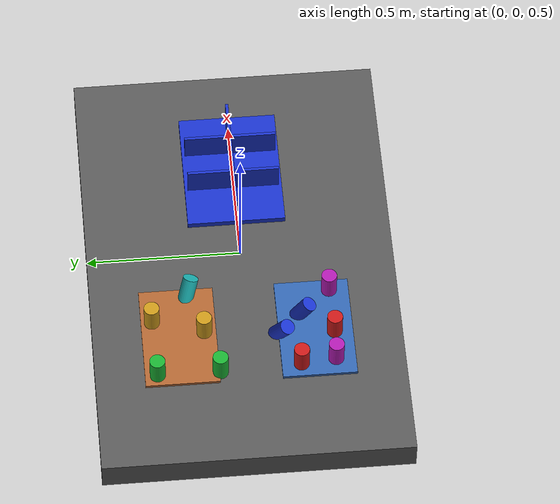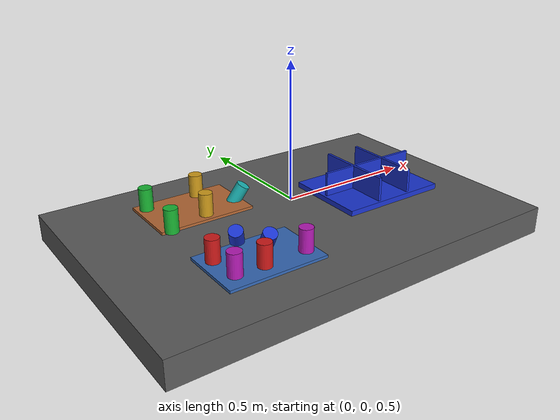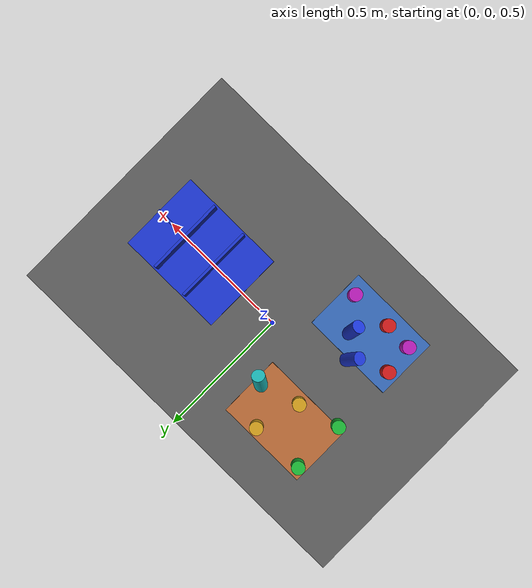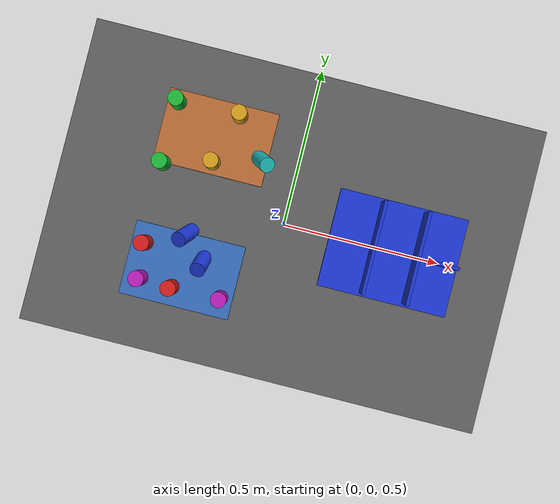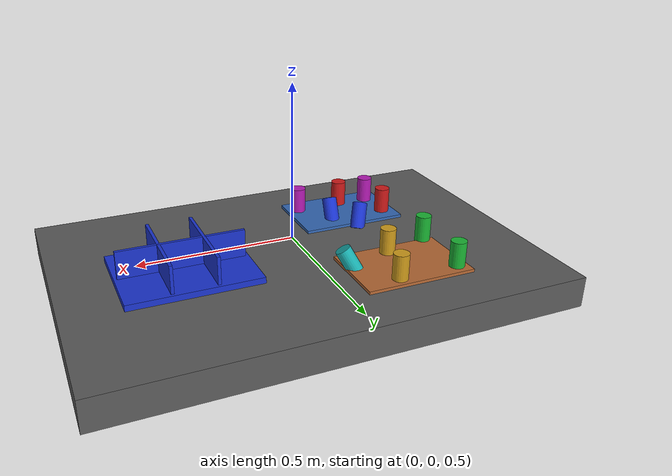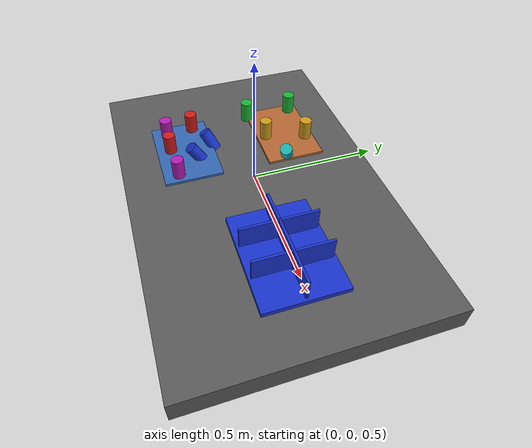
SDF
<?xml version="1.0" ?>
<sdf version="1.9">
  <!-- Standalone M1B scene.  The controller-backed Panda is spawned by the
       existing launch path; this file never alters the frozen M1A cube world. -->
  <world name="industrial_cylinder_v1">
    <physics name="bullet" type="bullet"><max_step_size>0.001</max_step_size><real_time_factor>1.0</real_time_factor></physics>
    <plugin name="gz::sim::systems::Physics" filename="gz-sim-physics-system"><engine><filename>gz-physics-bullet-featherstone-plugin</filename></engine></plugin>
    <plugin name="gz::sim::systems::UserCommands" filename="gz-sim-user-commands-system"/>
    <plugin name="gz::sim::systems::SceneBroadcaster" filename="gz-sim-scene-broadcaster-system"/>
    <plugin name="gz::sim::systems::Sensors" filename="gz-sim-sensors-system"><render_engine>ogre2</render_engine></plugin>
    <gravity>0 0 -9.81</gravity>
    <light type="directional" name="industrial_light"><pose>0 0 5 0 0 0</pose><direction>-0.3 0.2 -0.9</direction><diffuse>0.9 0.9 0.9 1</diffuse></light>
    <model name="industrial_work_table"><static>true</static><link name="link"><pose>0 0 0.4 0 0 0</pose><collision name="collision"><geometry><box><size>1.5 1.0 0.1</size></box></geometry></collision><visual name="visual"><geometry><box><size>1.5 1.0 0.1</size></box></geometry><material><diffuse>0.35 0.35 0.35 1</diffuse></material></visual></link></model>
    <model name="camera_fixture"><static>true</static><link name="camera_rgbd"><pose>-0.80 -0.80 1.40 0 0.77 0.93</pose><sensor name="front_rgbd" type="rgbd_camera"><always_on>1</always_on><update_rate>15</update_rate><topic>/xh/camera/rgbd</topic><camera><horizontal_fov>1.047</horizontal_fov><image><width>640</width><height>480</height><format>R8G8B8</format></image><clip><near>0.1</near><far>4.0</far></clip></camera></sensor></link></model>
    <model name="incoming_zone_a"><static>true</static><link name="link"><pose>-0.28 -0.22 0.455 0 0 0</pose><visual name="visual"><geometry><box><size>0.36 0.24 0.01</size></box></geometry><material><diffuse>0.2 0.4 0.7 1</diffuse></material></visual></link></model>
    <model name="incoming_zone_b"><static>true</static><link name="link"><pose>-0.28 0.22 0.455 0 0 0</pose><visual name="visual"><geometry><box><size>0.36 0.24 0.01</size></box></geometry><material><diffuse>0.7 0.4 0.2 1</diffuse></material></visual></link></model>
    <!-- M1B_RANDOM_PARTS_BEGIN -->
    <model name="cylinder_01"><pose>-0.2992 -0.2805 0.5000 0.0000 0.0000 1.7657</pose><link name="link"><inertial><mass>0.06</mass></inertial><collision name="collision"><geometry><cylinder><radius>0.025</radius><length>0.09</length></cylinder></geometry></collision><visual name="visual"><geometry><cylinder><radius>0.025</radius><length>0.09</length></cylinder></geometry><material><diffuse>0.800 0.100 0.100 1</diffuse><specular>0.15 0.15 0.15 1</specular></material></visual></link></model>
    <model name="cylinder_02"><pose>-0.4231 0.2991 0.5000 3.1416 0.0000 -0.5654</pose><link name="link"><inertial><mass>0.06</mass></inertial><collision name="collision"><geometry><cylinder><radius>0.025</radius><length>0.09</length></cylinder></geometry></collision><visual name="visual"><geometry><cylinder><radius>0.025</radius><length>0.09</length></cylinder></geometry><material><diffuse>0.100 0.700 0.200 1</diffuse><specular>0.15 0.15 0.15 1</specular></material></visual></link></model>
    <model name="cylinder_03"><pose>-0.2241 -0.1819 0.4800 0.4500 -0.3000 0.4190</pose><link name="link"><inertial><mass>0.06</mass></inertial><collision name="collision"><geometry><cylinder><radius>0.025</radius><length>0.09</length></cylinder></geometry></collision><visual name="visual"><geometry><cylinder><radius>0.025</radius><length>0.09</length></cylinder></geometry><material><diffuse>0.100 0.200 0.800 1</diffuse><specular>0.15 0.15 0.15 1</specular></material></visual></link></model>
    <model name="cylinder_04"><pose>-0.2698 0.1384 0.5000 0.0000 0.0000 1.2607</pose><link name="link"><inertial><mass>0.06</mass></inertial><collision name="collision"><geometry><cylinder><radius>0.025</radius><length>0.09</length></cylinder></geometry></collision><visual name="visual"><geometry><cylinder><radius>0.025</radius><length>0.09</length></cylinder></geometry><material><diffuse>0.800 0.600 0.100 1</diffuse><specular>0.15 0.15 0.15 1</specular></material></visual></link></model>
    <model name="cylinder_05"><pose>-0.1392 -0.2766 0.5000 3.1416 0.0000 -0.6271</pose><link name="link"><inertial><mass>0.06</mass></inertial><collision name="collision"><geometry><cylinder><radius>0.025</radius><length>0.09</length></cylinder></geometry></collision><visual name="visual"><geometry><cylinder><radius>0.025</radius><length>0.09</length></cylinder></geometry><material><diffuse>0.700 0.100 0.700 1</diffuse><specular>0.15 0.15 0.15 1</specular></material></visual></link></model>
    <model name="cylinder_06"><pose>-0.1153 0.1803 0.4800 0.4500 -0.3000 1.5786</pose><link name="link"><inertial><mass>0.06</mass></inertial><collision name="collision"><geometry><cylinder><radius>0.025</radius><length>0.09</length></cylinder></geometry></collision><visual name="visual"><geometry><cylinder><radius>0.025</radius><length>0.09</length></cylinder></geometry><material><diffuse>0.100 0.700 0.700 1</diffuse><specular>0.15 0.15 0.15 1</specular></material></visual></link></model>
    <model name="cylinder_07"><pose>-0.4149 -0.1637 0.5000 0.0000 0.0000 0.9017</pose><link name="link"><inertial><mass>0.06</mass></inertial><collision name="collision"><geometry><cylinder><radius>0.025</radius><length>0.09</length></cylinder></geometry></collision><visual name="visual"><geometry><cylinder><radius>0.025</radius><length>0.09</length></cylinder></geometry><material><diffuse>0.800 0.100 0.100 1</diffuse><specular>0.15 0.15 0.15 1</specular></material></visual></link></model>
    <model name="cylinder_08"><pose>-0.4241 0.0975 0.5000 3.1416 0.0000 -0.0673</pose><link name="link"><inertial><mass>0.06</mass></inertial><collision name="collision"><geometry><cylinder><radius>0.025</radius><length>0.09</length></cylinder></geometry></collision><visual name="visual"><geometry><cylinder><radius>0.025</radius><length>0.09</length></cylinder></geometry><material><diffuse>0.100 0.700 0.200 1</diffuse><specular>0.15 0.15 0.15 1</specular></material></visual></link></model>
    <model name="cylinder_09"><pose>-0.2949 -0.1085 0.4800 0.4500 -0.3000 -0.0878</pose><link name="link"><inertial><mass>0.06</mass></inertial><collision name="collision"><geometry><cylinder><radius>0.025</radius><length>0.09</length></cylinder></geometry></collision><visual name="visual"><geometry><cylinder><radius>0.025</radius><length>0.09</length></cylinder></geometry><material><diffuse>0.100 0.200 0.800 1</diffuse><specular>0.15 0.15 0.15 1</specular></material></visual></link></model>
    <model name="cylinder_10"><pose>-0.2204 0.3039 0.5000 0.0000 0.0000 2.9508</pose><link name="link"><inertial><mass>0.06</mass></inertial><collision name="collision"><geometry><cylinder><radius>0.025</radius><length>0.09</length></cylinder></geometry></collision><visual name="visual"><geometry><cylinder><radius>0.025</radius><length>0.09</length></cylinder></geometry><material><diffuse>0.800 0.600 0.100 1</diffuse><specular>0.15 0.15 0.15 1</specular></material></visual></link></model>
    <model name="cylinder_11"><pose>-0.4032 -0.2760 0.5000 3.1416 0.0000 2.8826</pose><link name="link"><inertial><mass>0.06</mass></inertial><collision name="collision"><geometry><cylinder><radius>0.025</radius><length>0.09</length></cylinder></geometry></collision><visual name="visual"><geometry><cylinder><radius>0.025</radius><length>0.09</length></cylinder></geometry><material><diffuse>0.700 0.100 0.700 1</diffuse><specular>0.15 0.15 0.15 1</specular></material></visual></link></model>
    <!-- M1B_RANDOM_PARTS_END -->
    <model name="blue_partition_bin"><static>true</static><pose>0.36 0 0.45 0 0 0</pose><link name="link"><collision name="floor"><pose>0 0 0.01 0 0 0</pose><geometry><box><size>0.42 0.32 0.02</size></box></geometry></collision><visual name="floor_visual"><pose>0 0 0.01 0 0 0</pose><geometry><box><size>0.42 0.32 0.02</size></box></geometry><material><diffuse>0.1 0.2 0.8 1</diffuse></material></visual><visual name="row_divider"><pose>0 0 0.06 0 0 0</pose><geometry><box><size>0.40 0.01 0.10</size></box></geometry><material><diffuse>0.1 0.2 0.8 1</diffuse></material></visual><visual name="col_divider_a"><pose>-0.07 0 0.06 0 0 0</pose><geometry><box><size>0.01 0.30 0.10</size></box></geometry><material><diffuse>0.1 0.2 0.8 1</diffuse></material></visual><visual name="col_divider_b"><pose>0.07 0 0.06 0 0 0</pose><geometry><box><size>0.01 0.30 0.10</size></box></geometry><material><diffuse>0.1 0.2 0.8 1</diffuse></material></visual></link></model>
    <!-- Reserved only: second table, bin transport corridor, stackable-bin
         collision volume, and second arm mounting namespace. -->
  </world>
</sdf>
